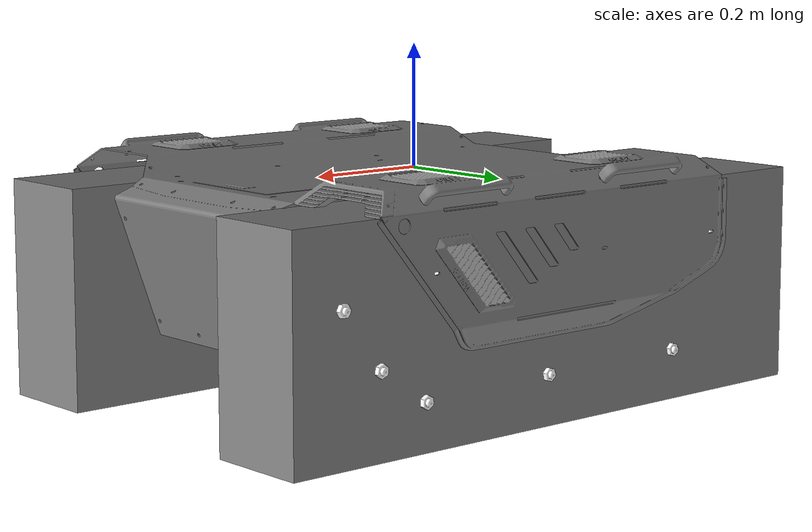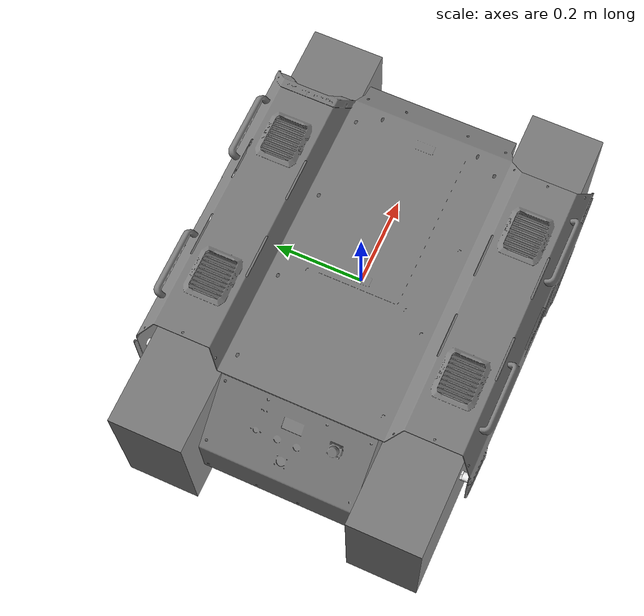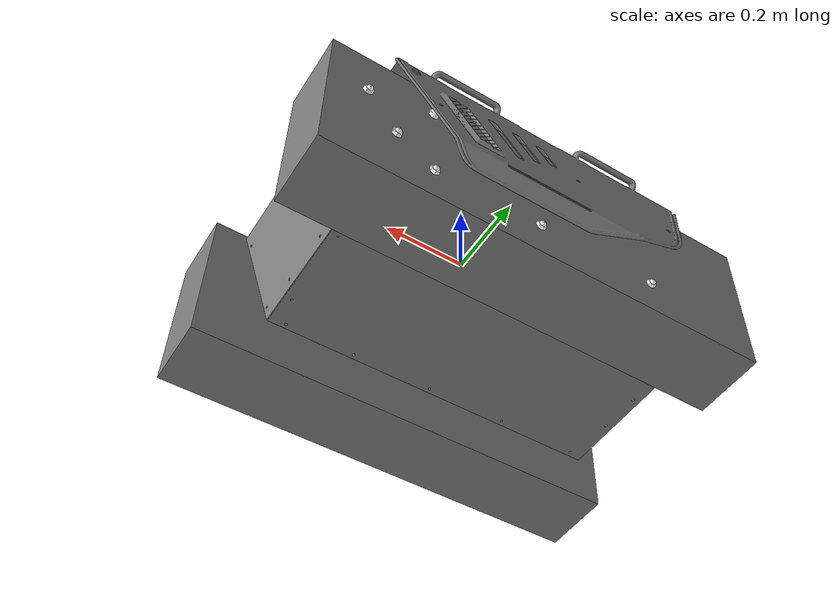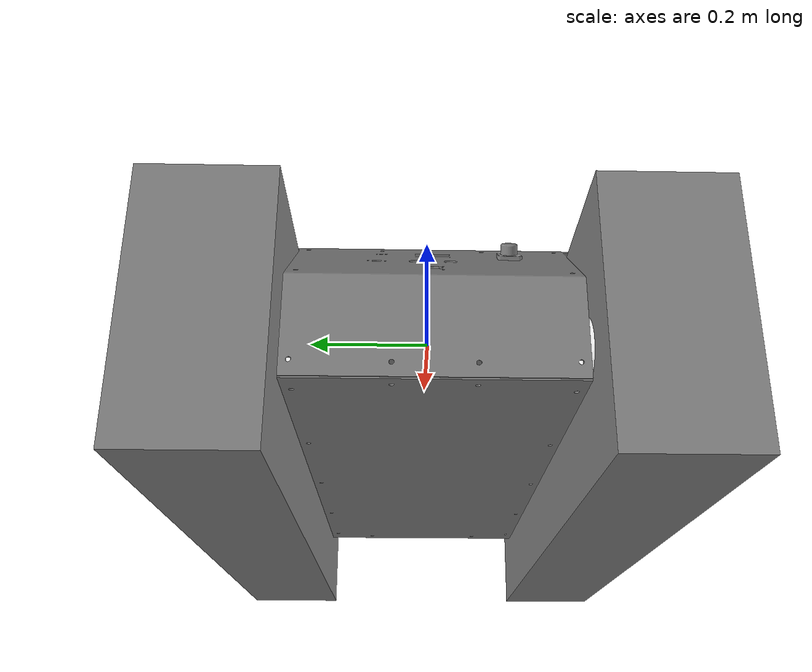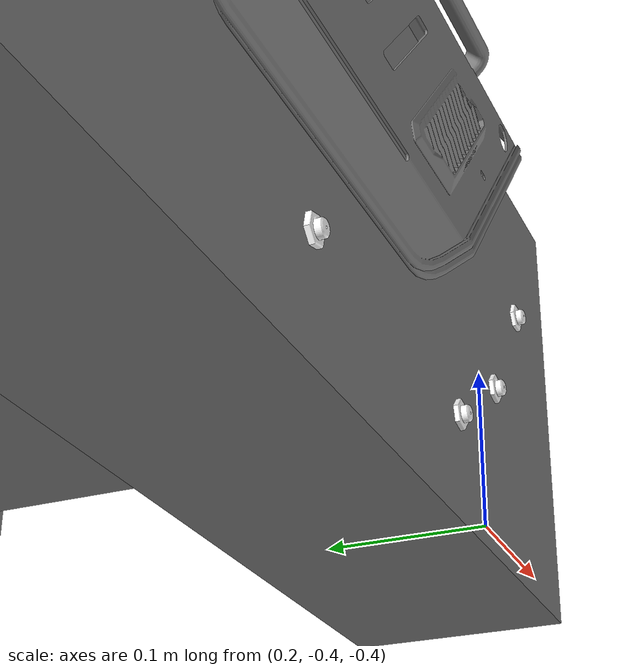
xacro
<?xml version="1.0" encoding="utf-8"?>
<robot name="bunker_description"
    xmlns:xacro="http://www.ros.org/wiki/xacro">

  <!-- Base link -->
  <link name="base_link">

    <visual>
      <origin xyz="0.53 -0.392 -0.358" rpy="1.57 0 3.14" />
      <geometry>
        <mesh filename="package://bunker_description/meshes/bunker_no_tracker.stl" scale="0.001 0.001 0.001" />
      </geometry>
      <material name="">
        <color rgba="0.5 0.5 0.5  1" />
      </material>
    </visual>

    <collision>
      <origin xyz="0.53 -0.392 -0.358" rpy="1.57 0 3.14" />
      <geometry>
        <mesh filename="package://bunker_description/meshes/bunker_no_tracker.stl" scale="0.001 0.001 0.001" />
      </geometry>
    </collision>
  </link>

  <link name="tracker_left">
    <collision name="tracker_left_collision">
      <origin xyz="0.53 -0.392 -0.358" rpy="1.57 0 3.14" />
      <geometry>
        <mesh filename="package://bunker_description/meshes/cube_left.stl" scale="0.001 0.001 0.001" />
      </geometry>
      <material name="">
        <color rgba="0.5 0.5 0.5  1" />
      </material>
    </collision>

    <visual name="tracker_left_visual">
      <origin xyz="0.53 -0.392 -0.358" rpy="1.57 0 3.14" />
      <geometry>
        <mesh filename="package://bunker_description/meshes/tracker_left.stl" scale="0.001 0.001 0.001" />
      </geometry>
      <material name="">
        <color rgba="0.5 0.5 0.5  1" />
      </material>
    </visual>
  </link>

  <joint name="tracker_left_joint" type="fixed">
    <parent link="base_link" />
    <child link="tracker_left" />
  </joint>

  <link name="tracker_right">
    <collision name="tracker_right_collision">
      <origin xyz="0.53 -0.392 -0.358" rpy="1.57 0 3.14" />
      <geometry>
        <mesh filename="package://bunker_description/meshes/cube_right.stl" scale="0.001 0.001 0.001" />
      </geometry>
      <material name="">
        <color rgba="0.5 0.5 0.5  1" />
      </material>
    </collision>

    <visual name="tracker_right_visual">
      <origin xyz="0.53 -0.392 -0.358" rpy="1.57 0 3.14" />
      <geometry>
        <mesh filename="package://bunker_description/meshes/tracker_right.stl" scale="0.001 0.001 0.001" />
      </geometry>
      <material name="">
        <color rgba="0.5 0.5 0.5  1" />
      </material>
    </visual>
  </link>

  <joint name="tracker_right_joint" type="fixed">
    <parent link="base_link" />
    <child link="tracker_right" />
  </joint>

  <link name="inertial_link">
    <inertial>
      <origin xyz="0.0212410555532523 0.00475458359568469 -0.127580557949736" rpy="0 0 0" />
      <mass value="22" />
      <inertia ixx="0.607716166684979" ixy="1.92178193996147E-05" ixz="-0.036532069356182"
      iyy="1.70041426855404" iyz="2.16963122007266E-05" izz="1.84232351935185" />
    </inertial>
  </link>

  <joint name="inertial_joint" type="fixed">
      <parent link="base_link" />
      <child link="inertial_link" />
  </joint>

  <link name="front_left_wheel_link">
    <inertial>
      <origin xyz="0 -1.38777878078145E-17 -0.0719999999999999" rpy="0 0 0" />
      <mass value="0.392034219968119" />
      <inertia ixx="0.000378440530116381" ixy="5.60822736805661E-21" ixz="3.04207802822425E-20"
      iyy="0.000378440530116381" iyz="-7.56626980356474E-21" izz="0.000710150518820894" />
    </inertial>

    <visual>
      <geometry>
        <mesh filename="package://bunker_description/meshes/wheel1_Link.stl" />
      </geometry>
      <material name="">
        <color rgba="1 1 1 1" />
      </material>
    </visual>

    <collision>
      <geometry>
        <mesh filename="package://bunker_description/meshes/wheel1_Link.stl" />
      </geometry>
    </collision>
  </link>

  <joint name="front_left_wheel_joint" type="continuous">
    <origin xyz="0.44403 0.3495 -0.12853" rpy="1.5708 0 -3.1416" />
    <parent link="base_link" />
    <child link="front_left_wheel_link" />
    <axis xyz="0 0 1" />
  </joint>

  <link name="front_left_wheel_rol1_link">
    <inertial>
      <origin xyz="-1.74279013442913E-08 5.87093572021469E-08 -0.0720000000000001" rpy="0 0 0" />
      <mass value="0.190328287901002" />
      <inertia ixx="6.58750963981394E-05" ixy="-1.46558944641469E-09" ixz="-8.34967331718859E-12"
      iyy="6.58795984671517E-05" iyz="-2.4786046130206E-12" izz="0.000112721820875598" />
    </inertial>

    <visual>
      <geometry>
        <mesh filename="package://bunker_description/meshes/wheel1.1_Link.stl" />
      </geometry>
      <material name="">
        <color rgba="1 1 1 1" />
      </material>
    </visual>

    <collision>
      <geometry>
        <mesh filename="package://bunker_description/meshes/wheel1.1_Link.stl" />
      </geometry>
    </collision>
  </link>

  <joint name="front_left_wheel_rol1_joint" type="continuous">
    <origin xyz="0.37551 0.3495 -0.22305" rpy="1.5708 0 -3.1416" />
    <parent link="base_link" />
    <child link="front_left_wheel_rol1_link" />
    <axis xyz="0 0 1" />
  </joint>

  <link name="front_left_wheel_rol2_link">
    <inertial>
      <origin xyz="1.66533453693773E-16 4.16333634234434E-17 -0.0720000000000002" rpy="0 0 0" />
      <mass value="0.271192811687251" />
      <inertia ixx="0.000179574259018481" ixy="1.15789498120549E-20" ixz="1.3563351843978E-21"
      iyy="0.000179574259018481" iyz="6.0369822309622E-23" izz="0.000332594534732139" />
    </inertial>

    <visual>
      <geometry>
        <mesh filename="package://bunker_description/meshes/wheel1.2_Link.stl" />
      </geometry>
      <material name="">
        <color rgba="1 1 1 1" />
      </material>
    </visual>

    <collision>
      <geometry>
        <mesh filename="package://bunker_description/meshes/wheel1.2_Link.stl" />
      </geometry>
    </collision>
  </link>

  <joint name="front_left_wheel_rol2_joint" type="continuous">
    <origin xyz="0.29039 0.3495 -0.28104" rpy="1.5708 0 -3.1416" />
    <parent link="base_link" />
    <child link="front_left_wheel_rol2_link" />
    <axis xyz="0 0 1" />
  </joint>

  <link name="front_left_wheel_rol3_link">
    <inertial>
      <origin xyz="3.44025652177504E-05 -2.66346274915008E-05 -0.0701504149473696" rpy="0 0 0" />
      <mass value="0.245835028330933" />
      <inertia ixx="0.000105254202004996" ixy="1.32328029886322E-08" ixz="3.84294589102693E-11"
      iyy="0.000105248656147198" iyz="-1.41155611914915E-11" izz="0.000173280771745758" />
    </inertial>

    <visual>
      <geometry>
        <mesh filename="package://bunker_description/meshes/wheel1.3_Link.stl" />
      </geometry>
      <material name="">
        <color rgba="1 1 1 1" />
      </material>
    </visual>

    <collision>
      <geometry>
        <mesh filename="package://bunker_description/meshes/wheel1.3_Link.stl" />
      </geometry>
    </collision>
  </link>

  <joint name="front_left_wheel_rol3_joint" type="continuous">
    <origin xyz="0.29603 0.3495 -0.087" rpy="1.5708 0 -3.1416" />
    <parent link="base_link" />
    <child link="front_left_wheel_rol3_link" />
    <axis xyz="0 0 1" />
  </joint>

  <link name="front_right_wheel_link">
    <inertial>
      <origin xyz="-1.66533453693773E-16 0 0.072" rpy="0 0 0" />
      <mass value="0.392034219968119" />
      <inertia ixx="0.000378440530116381" ixy="3.37302217863781E-21" ixz="2.71827270955143E-20"
      iyy="0.000378440530116381" iyz="-7.32821644893157E-21" izz="0.000710150518820894" />
    </inertial>

    <visual>
      <geometry>
        <mesh filename="package://bunker_description/meshes/wheel2_Link.stl" />
      </geometry>
      <material name="">
        <color rgba="1 1 1 1" />
      </material>
    </visual>

    <collision>
      <geometry>
        <mesh filename="package://bunker_description/meshes/wheel2_Link.stl" />
      </geometry>
    </collision>
  </link>

  <joint name="front_right_wheel_joint" type="continuous">
    <origin xyz="0.44403 -0.3495 -0.12853" rpy="1.5708 0 -3.1416" />
    <parent link="base_link" />
    <child link="front_right_wheel_link" />
    <axis xyz="0 0 1" />
  </joint>

  <link name="front_right_wheel_rol1_link">
    <inertial>
      <origin xyz="-1.74279017328693E-08 5.87093572160247E-08 0.0720000000000002" rpy="0 0 0" />
      <mass value="0.190328287901002" />
      <inertia ixx="6.58750963981394E-05" ixy="-1.46558944642761E-09" ixz="-8.34967332343028E-12"
      iyy="6.58795984671517E-05" iyz="-2.47860459929511E-12" izz="0.000112721820875598" />
    </inertial>

    <visual>
      <geometry>
        <mesh filename="package://bunker_description/meshes/wheel2.1_Link.stl" />
      </geometry>
      <material name="">
        <color rgba="1 1 1 1" />
      </material>
    </visual>

    <collision>
      <geometry>
        <mesh filename="package://bunker_description/meshes/wheel2.1_Link.stl" />
      </geometry>
    </collision>
  </link>

  <joint name="front_right_wheel_rol1_joint" type="continuous">
    <origin xyz="0.37551 -0.3495 -0.22305" rpy="1.5708 0 -3.1416" />
    <parent link="base_link" />
    <child link="front_right_wheel_rol1_link" />
    <axis xyz="0 0 1" />
  </joint>

  <link name="front_right_wheel_rol2_link">
    <inertial>
      <origin xyz="-1.38777878078145E-16 -4.85722573273506E-17 0.0720000000000003" rpy="0 0 0" />
      <mass value="0.27119281168725" />
      <inertia ixx="0.00017957425901848" ixy="6.28960386226657E-21" ixz="2.14010788664762E-21"
      iyy="0.00017957425901848" iyz="1.27709655724716E-22" izz="0.000332594534732139" />
    </inertial>

    <visual>
      <geometry>
        <mesh filename="package://bunker_description/meshes/wheel2.2_Link.stl" />
      </geometry>
      <material name="">
        <color rgba="1 1 1 1" />
      </material>
    </visual>

    <collision>
      <geometry>
        <mesh filename="package://bunker_description/meshes/wheel2.2_Link.stl" />
      </geometry>
    </collision>
  </link>

  <joint name="front_right_wheel_rol2_joint" type="continuous">
    <origin xyz="0.29039 -0.3495 -0.28104" rpy="1.5708 0 -3.1416" />
    <parent link="base_link" />
    <child link="front_right_wheel_rol2_link" />
    <axis xyz="0 0 1" />
  </joint>

  <link name="front_right_wheel_rol3_link">
    <inertial>
      <origin xyz="3.51083051564616E-05 -2.7181014665284E-05 0.0709276770204769" rpy="0 0 0" />
      <mass value="0.240893303086836" />
      <inertia ixx="0.000105035118852508" ixy="1.32328029886296E-08" ixz="3.84294589110161E-11"
      iyy="0.00010502957299471" iyz="-1.41155611875745E-11" izz="0.00017298179736849" />
    </inertial>

    <visual>
      <geometry>
        <mesh filename="package://bunker_description/meshes/wheel2.3_Link.stl" />
      </geometry>
      <material name="">
        <color rgba="1 1 1 1" />
      </material>
    </visual>

    <collision>
      <geometry>
        <mesh filename="package://bunker_description/meshes/wheel2.3_Link.stl" />
      </geometry>
    </collision>
  </link>

  <joint name="front_right_wheel_rol3_joint" type="continuous">
    <origin xyz="0.29603 -0.3495 -0.087" rpy="1.5708 0 -3.1416" />
    <parent link="base_link" />
    <child link="front_right_wheel_rol3_link" />
    <axis xyz="0 0 1" />
  </joint>

  <link name="rear_left_wheel_link">
    <inertial>
      <origin xyz="-1.5143569731535E-10 7.07767178198537E-16 -0.0246054820762604" rpy="0 0 0" />
      <mass value="1.35828296445862" />
      <inertia ixx="0.00232456013775523" ixy="-1.61343020248111E-09" ixz="-4.5670735364335E-13"
      iyy="0.00232456564213727" iyz="-1.36036258272812E-18" izz="0.00308347787030649" />
    </inertial>

    <visual>
      <geometry>
        <mesh filename="package://bunker_description/meshes/wheel3_Link.stl" />
      </geometry>
      <material name="">
        <color rgba="1 1 1 1" />
      </material>
    </visual>

    <collision>
      <geometry>
        <mesh filename="package://bunker_description/meshes/wheel3_Link.stl" />
      </geometry>
    </collision>
  </link>

  <joint name="rear_left_wheel_joint" type="continuous">
    <origin xyz="-0.38871 0.295 -0.19381" rpy="1.5708 0 -3.1416" />
    <parent link="base_link" />
    <child link="rear_left_wheel_link" />
    <axis xyz="0 0 1" />
  </joint>

  <link name="rear_left_wheel_rol1_link">
    <inertial>
      <origin xyz="5.55111512312578E-17 5.55111512312578E-17 -0.0720000000000002" rpy="0 0 0" />
      <mass value="0.271192811687251" />
      <inertia ixx="0.000179574259018481" ixy="-1.73824343982442E-20" ixz="-2.53159654382751E-21"
      iyy="0.000179574259018481" iyz="-3.13741449878515E-21" izz="0.000332594534732139" />
    </inertial>

    <visual>
      <geometry>
        <mesh filename="package://bunker_description/meshes/wheel3.1_Link.stl" />
      </geometry>
      <material name="">
        <color rgba="1 1 1 1" />
      </material>
    </visual>

    <collision>
      <geometry>
        <mesh filename="package://bunker_description/meshes/wheel3.1_Link.stl" />
      </geometry>
    </collision>
  </link>

  <joint name="rear_left_wheel_rol1_joint" type="continuous">
    <origin xyz="-0.23111 0.3495 -0.27671" rpy="1.5708 0 -3.1416" />
    <parent link="base_link" />
    <child link="rear_left_wheel_rol1_link" />
    <axis xyz="0 0 1" />
  </joint>

  <link name="rear_left_wheel_rol2_link">
    <inertial>
      <origin xyz="7.58128369110489E-17 7.63278329429795E-17 -0.0720000000000003" rpy="0 0 0" />
      <mass value="0.27119281168725" />
      <inertia ixx="0.00017957425901848" ixy="9.82929052458426E-22" ixz="1.10990388135291E-21"
      iyy="0.00017957425901848" iyz="-4.81322327079121E-21" izz="0.000332594534732139" />
    </inertial>

    <visual>
      <geometry>
        <mesh filename="package://bunker_description/meshes/wheel3.2_Link.stl" />
      </geometry>
      <material name="">
        <color rgba="1 1 1 1" />
      </material>
    </visual>

    <collision>
      <geometry>
        <mesh filename="package://bunker_description/meshes/wheel3.2_Link.stl" />
      </geometry>
    </collision>
  </link>

  <joint name="rear_left_wheel_rol2_joint" type="continuous">
    <origin xyz="0.043885 0.3495 -0.27671" rpy="1.5708 0 -3.1416" />
    <parent link="base_link" />
    <child link="rear_left_wheel_rol2_link" />
    <axis xyz="0 0 1" />
  </joint>

  <link name="rear_left_wheel_rol3_link">
    <inertial>
      <origin xyz="1.37732703020532E-08 -5.29206664124648E-05 -0.0701501700151683" rpy="0 0 0" />
      <mass value="0.245836054976119" />
      <inertia ixx="0.000105264944409738" ixy="7.98231761628902E-12" ixz="6.80400273605472E-11"
      iyy="0.000105238344260685" iyz="-2.72106317781962E-11" izz="0.000173281039335396" />
    </inertial>

    <visual>
      <geometry>
        <mesh filename="package://bunker_description/meshes/wheel3.3_Link.stl" />
      </geometry>
      <material name="">
        <color rgba="1 1 1 1" />
      </material>
    </visual>

    <collision>
      <geometry>
        <mesh filename="package://bunker_description/meshes/wheel3.3_Link.stl" />
      </geometry>
    </collision>
  </link>

  <joint name="rear_left_wheel_rol3_joint" type="continuous">
    <origin xyz="-0.28597 0.3495 -0.087" rpy="1.5708 0 -3.1416" />
    <parent link="base_link" />
    <child link="rear_left_wheel_rol3_link" />
    <axis xyz="0 0 1" />
  </joint>

  <link name="rear_right_wheel_link">
    <inertial>
      <origin xyz="5.55111512312578E-17 1.51436273243544E-10 0.0245928853369881" rpy="0 0 0" />
      <mass value="1.35828296445862" />
      <inertia ixx="0.00232456564213727" ixy="-1.6134302023684E-09" ixz="-3.67391703208082E-19"
      iyy="0.00232456013775523" iyz="-4.56707494796216E-13" izz="0.00308347787030649" />
    </inertial>

    <visual>
      <geometry>
        <mesh filename="package://bunker_description/meshes/wheel4_Link.stl" />
      </geometry>
      <material name="">
        <color rgba="1 1 1 1" />
      </material>
    </visual>

    <collision>
      <geometry>
        <mesh filename="package://bunker_description/meshes/wheel4_Link.stl" />
      </geometry>
    </collision>
  </link>

  <joint name="rear_right_wheel_joint" type="continuous">
    <origin xyz="-0.38871 -0.295 -0.19381" rpy="1.5708 0 -3.1416" />
    <parent link="base_link" />
    <child link="rear_right_wheel_link" />
    <axis xyz="0 0 1" />
  </joint>

  <link name="rear_right_wheel_rol1_link">
    <inertial>
      <origin xyz="-1.11022302462516E-16 -5.55111512312578E-17 0.0720000000000002" rpy="0 0 0" />
      <mass value="0.271192811687251" />
      <inertia ixx="0.000179574259018481" ixy="-7.93399024302093E-21" ixz="-2.13342044570487E-21"
      iyy="0.000179574259018481" iyz="-3.23624373974149E-21" izz="0.000332594534732139" />
    </inertial>

    <visual>
      <geometry>
        <mesh filename="package://bunker_description/meshes/wheel4.1_Link.stl" />
      </geometry>
      <material name="">
        <color rgba="1 1 1 1" />
      </material>
    </visual>

    <collision>
      <geometry>
        <mesh filename="package://bunker_description/meshes/wheel4.1_Link.stl" />
      </geometry>
    </collision>
  </link>

  <joint name="rear_right_wheel_rol1_joint" type="continuous">
    <origin xyz="-0.23111 -0.3495 -0.27671" rpy="1.5708 0 -3.1416" />
    <parent link="base_link" />
    <child link="rear_right_wheel_rol1_link" />
    <axis xyz="0 0 1" />
  </joint>

  <link name="rear_right_wheel_rol2_link">
    <inertial>
      <origin xyz="-7.64498056873841E-17 -4.85722573273506E-17 0.0720000000000004" rpy="0 0 0" />
      <mass value="0.27119281168725" />
      <inertia ixx="0.00017957425901848" ixy="6.3005828905746E-22" ixz="1.1753358195074E-22"
      iyy="0.00017957425901848" iyz="-3.27347099653111E-21" izz="0.000332594534732139" />
    </inertial>

    <visual>
      <geometry>
        <mesh filename="package://bunker_description/meshes/wheel4.2_Link.stl" />
      </geometry>
      <material name="">
        <color rgba="1 1 1 1" />
      </material>
    </visual>

    <collision>
      <geometry>
        <mesh filename="package://bunker_description/meshes/wheel4.2_Link.stl" />
      </geometry>
    </collision>
  </link>

  <joint name="rear_right_wheel_rol2_joint" type="continuous">
    <origin xyz="0.043885 -0.3495 -0.27671" rpy="1.5708 0 -3.1416" />
    <parent link="base_link" />
    <child link="rear_right_wheel_rol2_link" />
    <axis xyz="0 0 1" />
  </joint>

  <link name="rear_right_wheel_rol3_link">
    <inertial>
      <origin xyz="1.37732700244975E-08 -5.29206664124926E-05 0.0701152686893121" rpy="0 0 0" />
      <mass value="0.245836054976119" />
      <inertia ixx="0.000105264944409738" ixy="7.98231761858719E-12" ixz="6.80400273764357E-11"
      iyy="0.000105238344260685" iyz="-2.72106317797361E-11" izz="0.000173281039335396" />
    </inertial>

    <visual>
      <geometry>
        <mesh filename="package://bunker_description/meshes/wheel4.3_Link.stl" />
      </geometry>
      <material name="">
        <color rgba="1 1 1 1" />
      </material>
    </visual>

    <collision>
      <geometry>
        <mesh filename="package://bunker_description/meshes/wheel4.3_Link.stl" />
      </geometry>
    </collision>
  </link>

  <joint name="rear_right_wheel_rol3_joint" type="continuous">
    <origin xyz="-0.28597 -0.3495 -0.087" rpy="1.5708 0 -3.1416" />
    <parent link="base_link" />
    <child link="rear_right_wheel_rol3_link" />
    <axis xyz="0 0 1" />
  </joint>
</robot>
